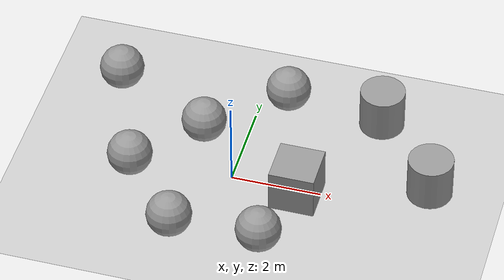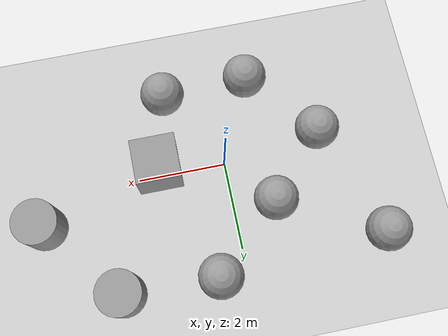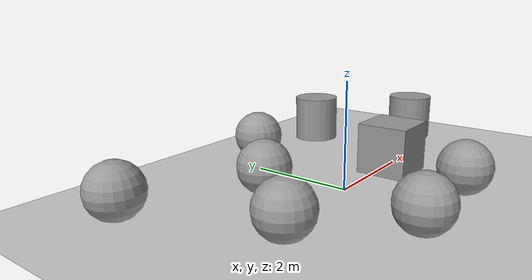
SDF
<sdf version="1.7">
 <world name="default">
  <light name="sun" type="directional">
   <pose>0 0 10 0 -0 0</pose>
   <diffuse>0.8 0.8 0.8 1</diffuse>
   <specular>0.2 0.2 0.2 1</specular>
   <attenuation>
    <range>1000</range>
    <constant>0.9</constant>
    <linear>0.01</linear>
    <quadratic>0.001</quadratic>
   </attenuation>
   <direction>-0.5 0.1 -0.9</direction>
   <spot><inner_angle>0</inner_angle><outer_angle>0</outer_angle><falloff>0</falloff></spot>
  </light>
  <model name="ground_plane">
   <static>1</static>
   <link name="link">
    <collision name="collision">
     <geometry><plane><normal>0 0 1</normal><size>100 100</size></plane></geometry>
     <surface><friction><ode><mu>100</mu><mu2>50</mu2></ode></friction></surface>
    </collision>
    <visual name="visual">
     <cast_shadows>0</cast_shadows>
     <geometry><plane><normal>0 0 1</normal><size>100 100</size></plane></geometry>
     <material>
      <script><uri>file://media/materials/scripts/gazebo.material</uri><name>Gazebo/Grey</name></script>
     </material>
    </visual>
   </link>
  </model>
  <gravity>0 0 -9.8</gravity>
  <magnetic_field>6e-06 2.3e-05 -4.2e-05</magnetic_field>
  <atmosphere type="adiabatic"/>
  <physics type="ode">
   <max_step_size>0.001</max_step_size>
   <real_time_factor>1</real_time_factor>
   <real_time_update_rate>1000</real_time_update_rate>
  </physics>
  <scene><ambient>0.4 0.4 0.4 1</ambient><background>0.7 0.7 0.7 1</background><shadows>1</shadows></scene>
  <spherical_coordinates>
   <surface_model>EARTH_WGS84</surface_model>
   <latitude_deg>0</latitude_deg>
   <longitude_deg>0</longitude_deg>
   <elevation>0</elevation>
   <heading_deg>0</heading_deg>
  </spherical_coordinates>
  <model name="unit_box">
   <pose>1.51272 -0.181418 0.499995 0 1e-05 0</pose>
   <link name="link">
    <inertial>
     <mass>1</mass>
     <inertia>
      <ixx>0.166667</ixx>
      <ixy>0</ixy>
      <ixz>0</ixz>
      <iyy>0.166667</iyy>
      <iyz>0</iyz>
      <izz>0.166667</izz>
     </inertia>
    </inertial>
    <collision name="collision"><geometry><box><size>1 1 1</size></box></geometry></collision>
    <visual name="visual">
     <geometry><box><size>1 1 1</size></box></geometry>
     <material>
      <script><name>Gazebo/Grey</name><uri>file://media/materials/scripts/gazebo.material</uri></script>
     </material>
    </visual>
   </link>
  </model>
  <model name="unit_sphere">
   <pose>-0.944955 1.09802 0.5 0 -0 0</pose>
   <link name="link">
    <inertial>
     <mass>1</mass>
     <inertia><ixx>0.1</ixx><ixy>0</ixy><ixz>0</ixz><iyy>0.1</iyy><iyz>0</iyz><izz>0.1</izz></inertia>
    </inertial>
    <collision name="collision"><geometry><sphere><radius>0.5</radius></sphere></geometry></collision>
    <visual name="visual">
     <geometry><sphere><radius>0.5</radius></sphere></geometry>
     <material>
      <script><name>Gazebo/Grey</name><uri>file://media/materials/scripts/gazebo.material</uri></script>
     </material>
    </visual>
   </link>
  </model>
  <model name="unit_sphere_3">
   <pose>-0.852039 -1.87945 0.5 0 -0 0</pose>
   <link name="link">
    <inertial>
     <mass>1</mass>
     <inertia><ixx>0.1</ixx><ixy>0</ixy><ixz>0</ixz><iyy>0.1</iyy><iyz>0</iyz><izz>0.1</izz></inertia>
    </inertial>
    <collision name="collision"><geometry><sphere><radius>0.5</radius></sphere></geometry></collision>
    <visual name="visual">
     <geometry><sphere><radius>0.5</radius></sphere></geometry>
     <material>
      <script><name>Gazebo/Grey</name><uri>file://media/materials/scripts/gazebo.material</uri></script>
     </material>
    </visual>
   </link>
  </model>
  <model name="unit_sphere_4">
   <pose>0.593929 2.54455 0.5 0 -0 0</pose>
   <link name="link">
    <inertial>
     <mass>1</mass>
     <inertia><ixx>0.1</ixx><ixy>0</ixy><ixz>0</ixz><iyy>0.1</iyy><iyz>0</iyz><izz>0.1</izz></inertia>
    </inertial>
    <collision name="collision"><geometry><sphere><radius>0.5</radius></sphere></geometry></collision>
    <visual name="visual">
     <geometry><sphere><radius>0.5</radius></sphere></geometry>
     <material>
      <script><name>Gazebo/Grey</name><uri>file://media/materials/scripts/gazebo.material</uri></script>
     </material>
    </visual>
   </link>
  </model>
  <model name="unit_sphere_6">
   <pose>-2.21182 -0.326781 0.5 0 -0 0</pose>
   <link name="link">
    <inertial>
     <mass>1</mass>
     <inertia><ixx>0.1</ixx><ixy>0</ixy><ixz>0</ixz><iyy>0.1</iyy><iyz>0</iyz><izz>0.1</izz></inertia>
    </inertial>
    <collision name="collision"><geometry><sphere><radius>0.5</radius></sphere></geometry></collision>
    <visual name="visual">
     <geometry><sphere><radius>0.5</radius></sphere></geometry>
     <material>
      <script><name>Gazebo/Grey</name><uri>file://media/materials/scripts/gazebo.material</uri></script>
     </material>
    </visual>
   </link>
  </model>
  <model name="unit_cylinder">
   <pose>2.75311 2.49324 0.499993 -3e-06 2e-06 0</pose>
   <link name="link">
    <inertial>
     <mass>1</mass>
     <inertia><ixx>0.145833</ixx><ixy>0</ixy><ixz>0</ixz><iyy>0.145833</iyy><iyz>0</iyz><izz>0.125</izz></inertia>
    </inertial>
    <collision name="collision">
     <geometry><cylinder><radius>0.5</radius><length>1</length></cylinder></geometry>
    </collision>
    <visual name="visual">
     <geometry><cylinder><radius>0.5</radius><length>1</length></cylinder></geometry>
     <material>
      <script><name>Gazebo/Grey</name><uri>file://media/materials/scripts/gazebo.material</uri></script>
     </material>
    </visual>
   </link>
  </model>
  <model name="unit_sphere_5">
   <pose>-3.20275 2.25213 0.5 0 -0 0</pose>
   <link name="link">
    <inertial>
     <mass>1</mass>
     <inertia><ixx>0.1</ixx><ixy>0</ixy><ixz>0</ixz><iyy>0.1</iyy><iyz>0</iyz><izz>0.1</izz></inertia>
    </inertial>
    <collision name="collision"><geometry><sphere><radius>0.5</radius></sphere></geometry></collision>
    <visual name="visual">
     <geometry><sphere><radius>0.5</radius></sphere></geometry>
     <material>
      <script><name>Gazebo/Grey</name><uri>file://media/materials/scripts/gazebo.material</uri></script>
     </material>
    </visual>
   </link>
  </model>
  <model name="unit_cylinder_0">
   <pose>4.26081 0.684037 0.499992 -3e-06 -4e-06 -0</pose>
   <link name="link">
    <inertial>
     <mass>1</mass>
     <inertia><ixx>0.145833</ixx><ixy>0</ixy><ixz>0</ixz><iyy>0.145833</iyy><iyz>0</iyz><izz>0.125</izz></inertia>
    </inertial>
    <collision name="collision">
     <geometry><cylinder><radius>0.5</radius><length>1</length></cylinder></geometry>
    </collision>
    <visual name="visual">
     <geometry><cylinder><radius>0.5</radius><length>1</length></cylinder></geometry>
     <material>
      <script><name>Gazebo/Grey</name><uri>file://media/materials/scripts/gazebo.material</uri></script>
     </material>
    </visual>
   </link>
  </model>
  <model name="unit_sphere_0">
   <pose>1.10483 -1.81107 0.5 0 -0 0</pose>
   <link name="link">
    <inertial>
     <mass>1</mass>
     <inertia><ixx>0.1</ixx><ixy>0</ixy><ixz>0</ixz><iyy>0.1</iyy><iyz>0</iyz><izz>0.1</izz></inertia>
    </inertial>
    <collision name="collision"><geometry><sphere><radius>0.5</radius></sphere></geometry></collision>
    <visual name="visual">
     <geometry><sphere><radius>0.5</radius></sphere></geometry>
     <material>
      <script><name>Gazebo/Grey</name><uri>file://media/materials/scripts/gazebo.material</uri></script>
     </material>
    </visual>
   </link>
  </model>
 </world>
</sdf>
